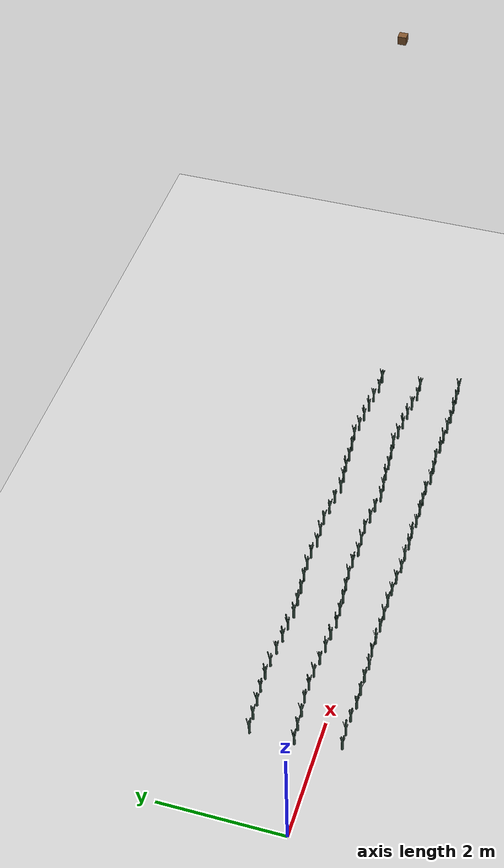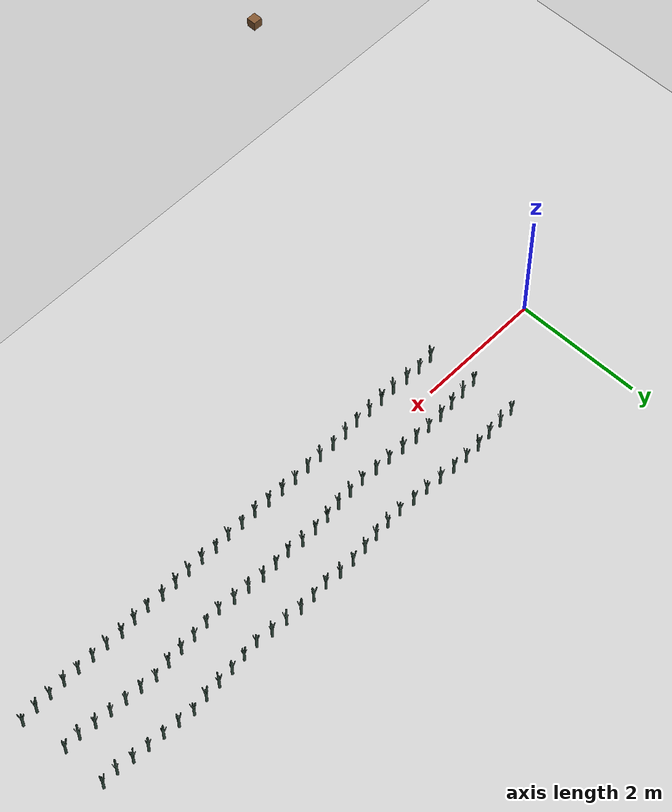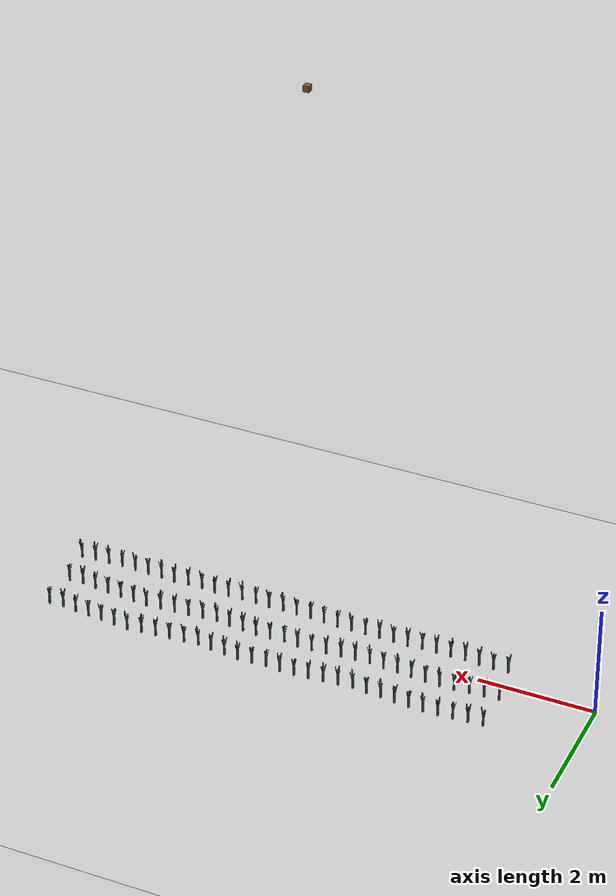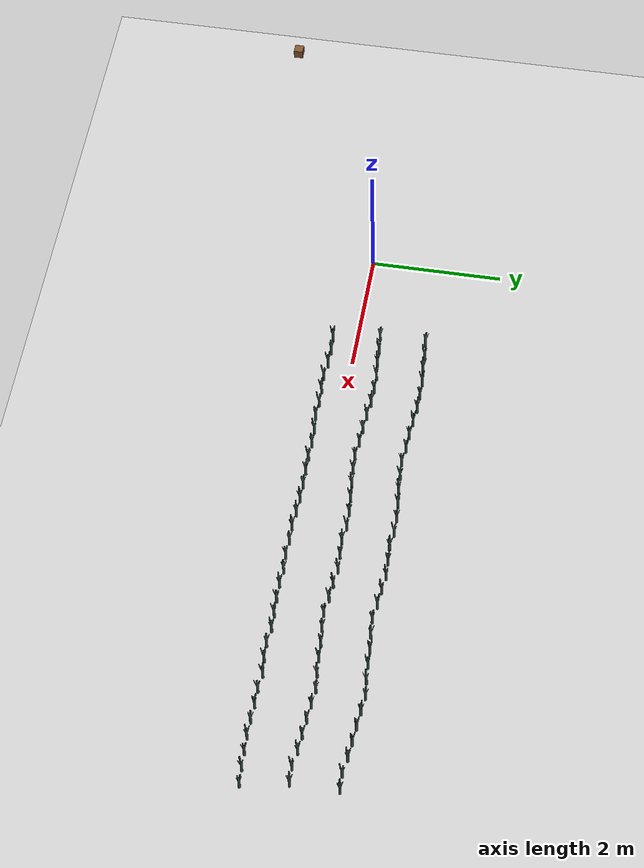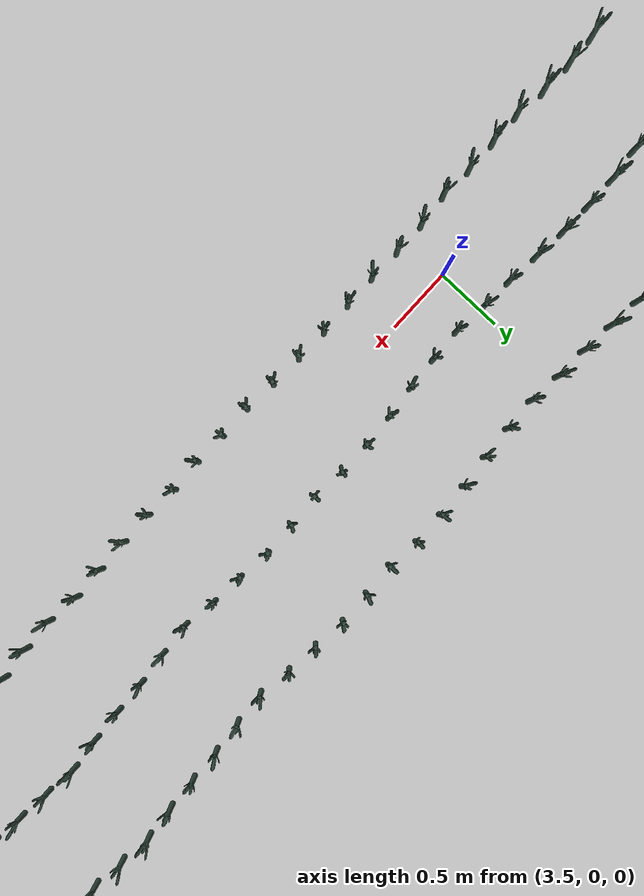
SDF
<sdf version="1.6">
 <world name="default">
  <light name="sun" type="directional">
   <pose>0 0 10 0 -0 0</pose>
   <diffuse>0.5 0.5 0.5 1</diffuse>
   <specular>0.1 0.1 0.1 1</specular>
   <attenuation>
    <range>1000</range>
    <constant>0.9</constant>
    <linear>0.01</linear>
    <quadratic>0.001</quadratic>
   </attenuation>
   <direction>0.9 0.5 -1</direction>
  </light>
  <scene><background>130 200 255 1</background><ambient>130 140 140 1</ambient></scene>
  <include><uri>model://sand_plane</uri></include>
  <include><pose>5 0 10 0 1.57 1.57</pose><uri>model://Camera</uri></include>
  <include><uri>model://Leek</uri><pose>1.500000 1.053455 0.15 0 0 31.093936</pose><static>0</static></include>
  <include><uri>model://Leek</uri><pose>1.750000 1.07657 0.15 0 0 -21.085103</pose><static>0</static></include>
  <include><uri>model://Leek</uri><pose>2.000000 1.09144 0.15 0 0 -142.701296</pose><static>0</static></include>
  <include><uri>model://Leek</uri><pose>2.250000 1.116815 0.15 0 0 -28.667320</pose><static>0</static></include>
  <include>
   <uri>model://Leek</uri>
   <pose>2.500000 1.120358 0.15 0 0 -176.776607</pose>
   <static>0</static>
  </include>
  <include><uri>model://Leek</uri><pose>2.750000 1.114567 0.15 0 0 -48.898725</pose><static>0</static></include>
  <include><uri>model://Leek</uri><pose>3.000000 1.093750 0.15 0 0 33.747201</pose><static>0</static></include>
  <include><uri>model://Leek</uri><pose>3.250000 1.072446 0.15 0 0 112.016233</pose><static>0</static></include>
  <include><uri>model://Leek</uri><pose>3.500000 1.062669 0.15 0 0 114.023949</pose><static>0</static></include>
  <include><uri>model://Leek</uri><pose>3.750000 1.039425 0.15 0 0 -95.174597</pose><static>0</static></include>
  <include><uri>model://Leek</uri><pose>4.000000 1.052611 0.15 0 0 23.498677</pose><static>0</static></include>
  <include><uri>model://Leek</uri><pose>4.250000 1.071331 0.15 0 0 -78.017386</pose><static>0</static></include>
  <include><uri>model://Leek</uri><pose>4.500000 1.098685 0.15 0 0 78.162470</pose><static>0</static></include>
  <include><uri>model://Leek</uri><pose>4.750000 1.117130 0.15 0 0 64.171555</pose><static>0</static></include>
  <include><uri>model://Leek</uri><pose>5.000000 1.121649 0.15 0 0 104.840696</pose><static>0</static></include>
  <include><uri>model://Leek</uri><pose>5.250000 1.093198 0.15 0 0 -61.214973</pose><static>0</static></include>
  <include><uri>model://Leek</uri><pose>5.500000 1.110600 0.15 0 0 95.404228</pose><static>0</static></include>
  <include><uri>model://Leek</uri><pose>5.750000 1.122740 0.15 0 0 -65.342288</pose><static>0</static></include>
  <include><uri>model://Leek</uri><pose>6.000000 1.096236 0.15 0 0 -33.873640</pose><static>0</static></include>
  <include>
   <uri>model://Leek</uri>
   <pose>6.250000 1.078426 0.15 0 0 -104.165669</pose>
   <static>0</static>
  </include>
  <include><uri>model://Leek</uri><pose>6.500000 1.042026 0.15 0 0 18.231172</pose><static>0</static></include>
  <include>
   <uri>model://Leek</uri>
   <pose>6.750000 1.061856 0.15 0 0 -163.298047</pose>
   <static>0</static>
  </include>
  <include><uri>model://Leek</uri><pose>7.000000 1.088469 0.15 0 0 76.218734</pose><static>0</static></include>
  <include><uri>model://Leek</uri><pose>7.250000 1.103083 0.15 0 0 27.743371</pose><static>0</static></include>
  <include><uri>model://Leek</uri><pose>7.500000 1.122475 0.15 0 0 22.277067</pose><static>0</static></include>
  <include><uri>model://Leek</uri><pose>7.750000 1.149041 0.15 0 0 81.371069</pose><static>0</static></include>
  <include><uri>model://Leek</uri><pose>8.000000 1.127604 0.15 0 0 158.432280</pose><static>0</static></include>
  <include><uri>model://Leek</uri><pose>8.250000 1.107059 0.15 0 0 63.531456</pose><static>0</static></include>
  <include><uri>model://Leek</uri><pose>8.500000 1.087978 0.15 0 0 -18.195034</pose><static>0</static></include>
  <include><uri>model://Leek</uri><pose>8.750000 1.068388 0.15 0 0 165.495991</pose><static>0</static></include>
  <include>
   <uri>model://Leek</uri>
   <pose>9.000000 1.033020 0.15 0 0 -152.819568</pose>
   <static>0</static>
  </include>
  <include><uri>model://Leek</uri><pose>9.250000 1.043898 0.15 0 0 -54.914159</pose><static>0</static></include>
  <include><uri>model://Leek</uri><pose>1.500000 0.353455 0.15 0 0 31.093936</pose><static>0</static></include>
  <include><uri>model://Leek</uri><pose>1.750000 0.37657 0.15 0 0 -21.085103</pose><static>0</static></include>
  <include><uri>model://Leek</uri><pose>2.000000 0.39144 0.15 0 0 -142.701296</pose><static>0</static></include>
  <include><uri>model://Leek</uri><pose>2.250000 0.416815 0.15 0 0 -28.667320</pose><static>0</static></include>
  <include>
   <uri>model://Leek</uri>
   <pose>2.500000 0.420358 0.15 0 0 -176.776607</pose>
   <static>0</static>
  </include>
  <include><uri>model://Leek</uri><pose>2.750000 0.414567 0.15 0 0 -48.898725</pose><static>0</static></include>
  <include><uri>model://Leek</uri><pose>3.000000 0.393750 0.15 0 0 33.747201</pose><static>0</static></include>
  <include><uri>model://Leek</uri><pose>3.250000 0.372446 0.15 0 0 112.016233</pose><static>0</static></include>
  <include><uri>model://Leek</uri><pose>3.500000 0.362669 0.15 0 0 114.023949</pose><static>0</static></include>
  <include><uri>model://Leek</uri><pose>3.750000 0.339425 0.15 0 0 -95.174597</pose><static>0</static></include>
  <include><uri>model://Leek</uri><pose>4.000000 0.352611 0.15 0 0 23.498677</pose><static>0</static></include>
  <include><uri>model://Leek</uri><pose>4.250000 0.371331 0.15 0 0 -78.017386</pose><static>0</static></include>
  <include><uri>model://Leek</uri><pose>4.500000 0.398685 0.15 0 0 78.162470</pose><static>0</static></include>
  <include><uri>model://Leek</uri><pose>4.750000 0.417130 0.15 0 0 64.171555</pose><static>0</static></include>
  <include><uri>model://Leek</uri><pose>5.000000 0.421649 0.15 0 0 104.840696</pose><static>0</static></include>
  <include><uri>model://Leek</uri><pose>5.250000 0.393198 0.15 0 0 -61.214973</pose><static>0</static></include>
  <include><uri>model://Leek</uri><pose>5.500000 0.410600 0.15 0 0 95.404228</pose><static>0</static></include>
  <include><uri>model://Leek</uri><pose>5.750000 0.422740 0.15 0 0 -65.342288</pose><static>0</static></include>
  <include><uri>model://Leek</uri><pose>6.000000 0.396236 0.15 0 0 -33.873640</pose><static>0</static></include>
  <include>
   <uri>model://Leek</uri>
   <pose>6.250000 0.378426 0.15 0 0 -104.165669</pose>
   <static>0</static>
  </include>
  <include><uri>model://Leek</uri><pose>6.500000 0.342026 0.15 0 0 18.231172</pose><static>0</static></include>
  <include>
   <uri>model://Leek</uri>
   <pose>6.750000 0.361856 0.15 0 0 -163.298047</pose>
   <static>0</static>
  </include>
  <include><uri>model://Leek</uri><pose>7.000000 0.388469 0.15 0 0 76.218734</pose><static>0</static></include>
  <include><uri>model://Leek</uri><pose>7.250000 0.403083 0.15 0 0 27.743371</pose><static>0</static></include>
  <include><uri>model://Leek</uri><pose>7.500000 0.422475 0.15 0 0 22.277067</pose><static>0</static></include>
  <include><uri>model://Leek</uri><pose>7.750000 0.449041 0.15 0 0 81.371069</pose><static>0</static></include>
  <include><uri>model://Leek</uri><pose>8.000000 0.427604 0.15 0 0 158.432280</pose><static>0</static></include>
  <include><uri>model://Leek</uri><pose>8.250000 0.407059 0.15 0 0 63.531456</pose><static>0</static></include>
  <include><uri>model://Leek</uri><pose>8.500000 0.387978 0.15 0 0 -18.195034</pose><static>0</static></include>
  <include><uri>model://Leek</uri><pose>8.750000 0.368388 0.15 0 0 165.495991</pose><static>0</static></include>
  <include>
   <uri>model://Leek</uri>
   <pose>9.000000 0.333020 0.15 0 0 -152.819568</pose>
   <static>0</static>
  </include>
  <include><uri>model://Leek</uri><pose>9.250000 0.343898 0.15 0 0 -54.914159</pose><static>0</static></include>
  <include>
   <uri>model://Leek</uri>
   <pose>1.620299 -0.355295 0.15 0 0 -47.658381</pose>
   <static>0</static>
  </include>
  <include><uri>model://Leek</uri><pose>1.870299 -0.340901 0.15 0 0 81.891212</pose><static>0</static></include>
  <include><uri>model://Leek</uri><pose>2.120299 -0.344815 0.15 0 0 46.669446</pose><static>0</static></include>
  <include>
   <uri>model://Leek</uri>
   <pose>2.370299 -0.369074 0.15 0 0 -171.665159</pose>
   <static>0</static>
  </include>
  <include>
   <uri>model://Leek</uri>
   <pose>2.620299 -0.360144 0.15 0 0 -91.296735</pose>
   <static>0</static>
  </include>
  <include>
   <uri>model://Leek</uri>
   <pose>2.870299 -0.353715 0.15 0 0 -33.434942</pose>
   <static>0</static>
  </include>
  <include>
   <uri>model://Leek</uri>
   <pose>3.120299 -0.363195 0.15 0 0 -118.752922</pose>
   <static>0</static>
  </include>
  <include>
   <uri>model://Leek</uri>
   <pose>3.370299 -0.338383 0.15 0 0 104.553189</pose>
   <static>0</static>
  </include>
  <include>
   <uri>model://Leek</uri>
   <pose>3.620299 -0.335309 0.15 0 0 132.222583</pose>
   <static>0</static>
  </include>
  <include><uri>model://Leek</uri><pose>3.870299 -0.340454 0.15 0 0 85.909775</pose><static>0</static></include>
  <include>
   <uri>model://Leek</uri>
   <pose>4.120299 -0.336590 0.15 0 0 120.687470</pose>
   <static>0</static>
  </include>
  <include>
   <uri>model://Leek</uri>
   <pose>4.370299 -0.330500 0.15 0 0 175.498247</pose>
   <static>0</static>
  </include>
  <include>
   <uri>model://Leek</uri>
   <pose>4.620299 -0.335135 0.15 0 0 133.788351</pose>
   <static>0</static>
  </include>
  <include><uri>model://Leek</uri><pose>4.870299 -0.344225 0.15 0 0 51.974599</pose><static>0</static></include>
  <include>
   <uri>model://Leek</uri>
   <pose>5.120299 -0.363053 0.15 0 0 -117.480808</pose>
   <static>0</static>
  </include>
  <include>
   <uri>model://Leek</uri>
   <pose>5.370299 -0.356971 0.15 0 0 -62.741912</pose>
   <static>0</static>
  </include>
  <include>
   <uri>model://Leek</uri>
   <pose>5.620299 -0.365452 0.15 0 0 -139.064815</pose>
   <static>0</static>
  </include>
  <include><uri>model://Leek</uri><pose>5.870299 -0.349987 0.15 0 0 0.116144</pose><static>0</static></include>
  <include>
   <uri>model://Leek</uri>
   <pose>6.120299 -0.364440 0.15 0 0 -129.964167</pose>
   <static>0</static>
  </include>
  <include>
   <uri>model://Leek</uri>
   <pose>6.370299 -0.359921 0.15 0 0 -89.290919</pose>
   <static>0</static>
  </include>
  <include><uri>model://Leek</uri><pose>6.620299 -0.350384 0.15 0 0 -3.459428</pose><static>0</static></include>
  <include><uri>model://Leek</uri><pose>6.870299 -0.341373 0.15 0 0 77.643738</pose><static>0</static></include>
  <include>
   <uri>model://Leek</uri>
   <pose>7.120299 -0.368853 0.15 0 0 -169.673058</pose>
   <static>0</static>
  </include>
  <include>
   <uri>model://Leek</uri>
   <pose>7.370299 -0.355985 0.15 0 0 -53.860994</pose>
   <static>0</static>
  </include>
  <include>
   <uri>model://Leek</uri>
   <pose>7.620299 -0.330124 0.15 0 0 178.880412</pose>
   <static>0</static>
  </include>
  <include>
   <uri>model://Leek</uri>
   <pose>7.870299 -0.353624 0.15 0 0 -32.612808</pose>
   <static>0</static>
  </include>
  <include>
   <uri>model://Leek</uri>
   <pose>8.120299 -0.352674 0.15 0 0 -24.063254</pose>
   <static>0</static>
  </include>
  <include>
   <uri>model://Leek</uri>
   <pose>8.370299 -0.361187 0.15 0 0 -100.680087</pose>
   <static>0</static>
  </include>
  <include>
   <uri>model://Leek</uri>
   <pose>8.620299 -0.365824 0.15 0 0 -142.412364</pose>
   <static>0</static>
  </include>
  <include>
   <uri>model://Leek</uri>
   <pose>8.870299 -0.355684 0.15 0 0 -51.151729</pose>
   <static>0</static>
  </include>
  <include><uri>model://Leek</uri><pose>9.120299 -0.345391 0.15 0 0 41.483021</pose><static>0</static></include>
  <include>
   <uri>model://Leek</uri>
   <pose>9.370299 -0.330516 0.15 0 0 175.360278</pose>
   <static>0</static>
  </include>
 </world>
</sdf>

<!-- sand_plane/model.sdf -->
<sdf version="1.4">
<model name="sand_plane">
  <static>true</static>
    <link name="link">
      <collision name="collision">
        <geometry>
          <plane>
            <normal>0 0 1</normal>
            <size>100 100</size>
          </plane>
        </geometry>
        <surface>
          <friction>
            <ode>
              <mu>0.99</mu>
              <mu2>0.99</mu2>
            </ode>
          </friction>
        </surface>
      </collision>
      <visual name="visual">
        <cast_shadows>false</cast_shadows>
        <geometry>
          <plane>
            <normal>0 0 1</normal>
            <size>100 100</size>
          </plane>
        </geometry>
        <material>
          <script>
            <uri>model://ground_plane/materials/scripts/my_ground_plane.material</uri>
            <uri>model://ground_plane/materials/textures</uri>
            <name>my_ground_plane/Sand</name>
          </script>
        </material>
      </visual>
    </link>
  </model>
</sdf>

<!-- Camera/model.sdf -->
<sdf version='1.6'>
  <model name='Camera'>
    <link name='link'>
      <pose frame=''>0 0 0 0 -0 0</pose>
      <inertial>
        <mass>1</mass>
        <inertia>
          <ixx>0.1</ixx>
          <ixy>0</ixy>
          <ixz>0</ixz>
          <iyy>0.1</iyy>
          <iyz>0</iyz>
          <izz>0.1</izz>
        </inertia>
        <pose frame=''>0 0 0 0 -0 0</pose>
      </inertial>
      <self_collide>0</self_collide>
      <kinematic>0</kinematic>
      <gravity>0</gravity>
      <visual name='visual'>
        <geometry>
          <box>
            <size>0.1 0.1 0.1</size>
          </box>
        </geometry>
        <material>
          <script>
            <uri>model://ground_plane/materials/scripts/my_ground_plane.material</uri>
            <name>my_ground_plane/Brown</name>
          </script>
          <shader type='vertex'>
            <normal_map>__default__</normal_map>
          </shader>
        </material>
        <pose frame=''>0 0 0 0 -0 0</pose>
        <cast_shadows>1</cast_shadows>
        <transparency>0</transparency>
      </visual>

      <sensor name="fixed_top_camera" type="camera">
        <camera>
          <horizontal_fov>1.4</horizontal_fov>
          <image>
            <width>600</width>
            <height>300</height>
          </image>
          <clip>
            <near>0.01</near>
            <far>300</far>
          </clip>
        </camera>
        <always_on>1</always_on>
        <update_rate>5</update_rate>
        <plugin name="camera_controller" filename="libgazebo_ros_camera.so">
          <alwaysOn>true</alwaysOn>
          <updateRate>0.0</updateRate>
          <cameraName>oz440/fixed_top_camera</cameraName>
          <imageTopicName>image_raw</imageTopicName>
          <cameraInfoTopicName>camera_info</cameraInfoTopicName>
          <frameName>camera_link</frameName>
        </plugin>
      </sensor>

    </link>
    <static>1</static>
    <allow_auto_disable>1</allow_auto_disable>

  </model>
</sdf>

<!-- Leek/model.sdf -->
<sdf version='1.6'>
  <model name='Leek'>
    <link name='link'>
      <pose frame=''>0 0 0 0 -0 0</pose>
      <inertial>
        <mass>1</mass>
        <inertia>
          <ixx>0.145833</ixx>
          <ixy>0</ixy>
          <ixz>0</ixz>
          <iyy>0.145833</iyy>
          <iyz>0</iyz>
          <izz>0.125</izz>
        </inertia>
        <pose frame=''>0 0 0 0 -0 0</pose>
      </inertial>
      <self_collide>0</self_collide>
      <kinematic>0</kinematic>
      <gravity>1</gravity>
      <visual name='visual'>
        <geometry>
          <mesh>
            <uri>model://Leek/Poireau.dae</uri>
            <scale>1 1 1</scale>
          </mesh>
        </geometry>
        <material>
          <script>
            <name>Gazebo/Grey</name>
            <uri>file://media/materials/scripts/gazebo.material</uri>
          </script>
          <ambient>0.3 0.6 0.5 0</ambient>
          <diffuse>0.2 0.3 0.25 0</diffuse>
          <specular>0 0 0 1</specular>
          <emissive>0 0 0 1</emissive>
          <shader type='vertex'>
            <normal_map>__default__</normal_map>
          </shader>
        </material>
        <pose frame=''>0 0 -0.08 0 -0 0</pose>
        <cast_shadows>1</cast_shadows>
        <transparency>0</transparency>
      </visual>
      <collision name='collision'>
        <laser_retro>0</laser_retro>
        <max_contacts>10</max_contacts>
        <pose frame=''>0 0 0 0 -0 0</pose>
        <geometry>
          <cylinder>
            <radius>0.02</radius>
            <length>0.25</length>
          </cylinder>
        </geometry>
        <surface>
          <friction>
            <ode>
              <mu>1</mu>
              <mu2>1</mu2>
              <fdir1>0 0 0</fdir1>
              <slip1>0</slip1>
              <slip2>0</slip2>
            </ode>
            <torsional>
              <coefficient>1</coefficient>
              <patch_radius>0</patch_radius>
              <surface_radius>0</surface_radius>
              <use_patch_radius>1</use_patch_radius>
              <ode>
                <slip>0</slip>
              </ode>
            </torsional>
          </friction>
          <bounce>
            <restitution_coefficient>0</restitution_coefficient>
            <threshold>1e+06</threshold>
          </bounce>
          <contact>
            <collide_without_contact>0</collide_without_contact>
            <collide_without_contact_bitmask>1</collide_without_contact_bitmask>
            <collide_bitmask>1</collide_bitmask>
            <ode>
              <soft_cfm>0</soft_cfm>
              <soft_erp>0.2</soft_erp>
              <kp>1e+13</kp>
              <kd>1</kd>
              <max_vel>0.01</max_vel>
              <min_depth>0</min_depth>
            </ode>
            <bullet>
              <split_impulse>1</split_impulse>
              <split_impulse_penetration_threshold>-0.01</split_impulse_penetration_threshold>
              <soft_cfm>0</soft_cfm>
              <soft_erp>0.2</soft_erp>
              <kp>1e+13</kp>
              <kd>1</kd>
            </bullet>
          </contact>
        </surface>
      </collision>
    </link>
    <static>0</static>
    <allow_auto_disable>1</allow_auto_disable>
  </model>
</sdf>
